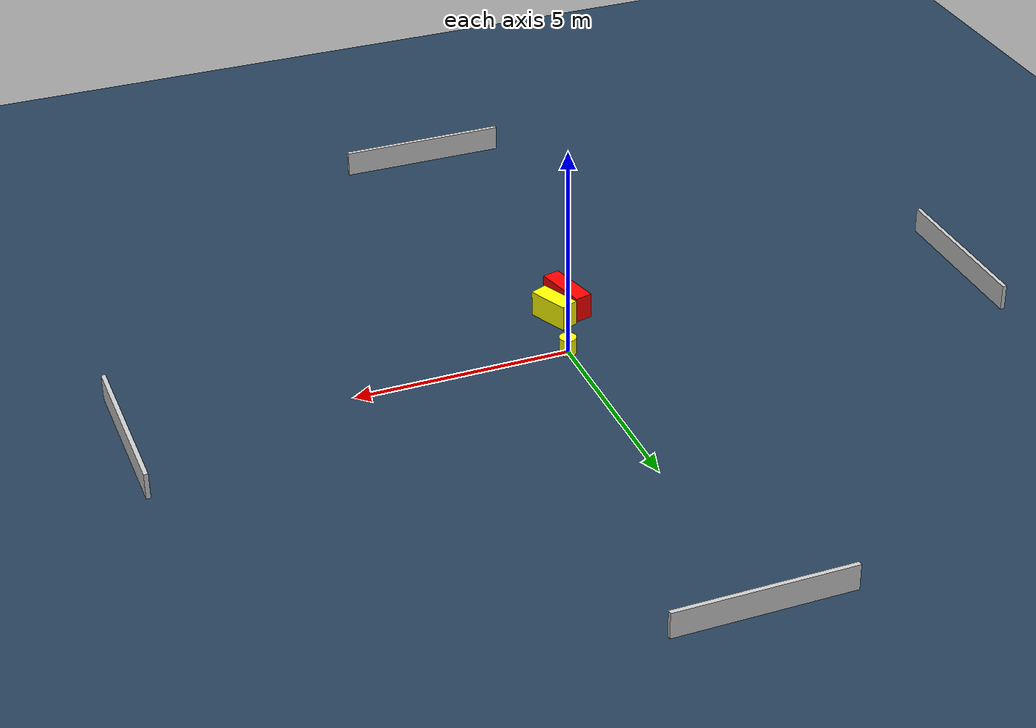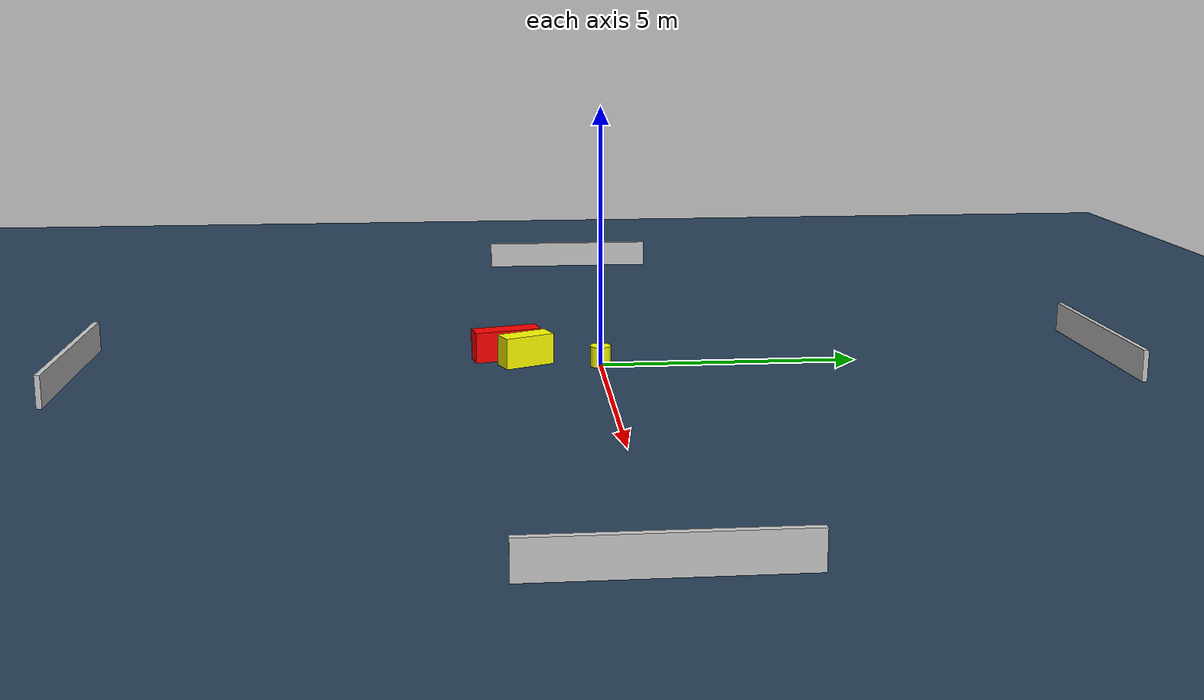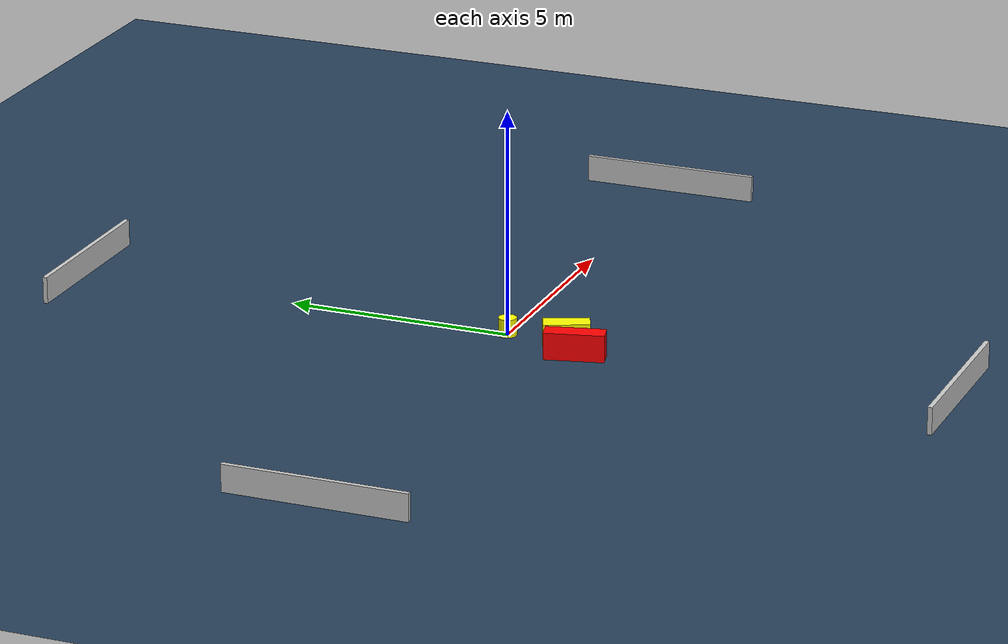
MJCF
<?xml version="1.0" ?>
<mujoco model="generated_environment">
  <option timestep="0.01" integrator="RK4" cone="elliptic"/>
  <default>
    <geom density="1"/>
  </default>
  <asset>
    <texture builtin="gradient" height="3072" name="skybox" rgb1="0.3 0.5 0.7" rgb2="0 0 0" type="skybox" width="512"/>
    <texture builtin="checker" height="300" name="groundplane" rgb1="0.2 0.3 0.4" rgb2="0.1 0.2 0.3" type="2d" width="300"/>
    <material name="groundplane" reflectance="0.2" texrepeat="5 5" texture="groundplane"/>
  </asset>
  <worldbody>
    <light dir="0 0 -1" directional="true" pos="0 0 1.5"/>
    <geom condim="3" friction="0.5 0.005 0.001" material="groundplane" name="floor" pos="0 0 0" size="0 0 0.05" type="plane"/>
    <body name="walls">
      <geom name="wall_1" condim="4" pos="-10.0 0.0 0.3" rgba="0.800000011920929 0.800000011920929 0.800000011920929 1.0" size="0.05 2.0 0.3" type="box"/>
      <geom name="wall_2" condim="4" pos="10.0 0.0 0.3" rgba="0.800000011920929 0.800000011920929 0.800000011920929 1.0" size="0.05 2.0 0.3" type="box"/>
      <geom name="wall_3" condim="4" pos="0.0 -10.0 0.3" rgba="0.800000011920929 0.800000011920929 0.800000011920929 1.0" size="2.0 0.05 0.3" type="box"/>
      <geom name="wall_4" condim="4" pos="0.0 10.0 0.3" rgba="0.800000011920929 0.800000011920929 0.800000011920929 1.0" size="2.0 0.05 0.3" type="box"/>
    </body>
    <body name="robot">
      <joint name="joint_x" type="slide" pos="0 0 0" axis="1 0 0"/>
      <joint name="joint_y" type="slide" pos="0 0 0" axis="0 1 0"/>
      <geom name="robot" type="cylinder" pos="0.0 0.0 0.2" size="0.2 0.2 0.0" mass="5.0" friction="1.0 0.005 0.0001" condim="4" rgba="1.0 1.0 0.0 1.0"/>
    </body>
    <body name="obstacle_1_movable">
      <geom name="obstacle_1_movable" condim="4" pos="-0.23774446544370312 -1.436043011082717 0.3" euler="0 0 203.5609966792569" friction="0.0 0.005 0.001" rgba="1.0 1.0 0.0 1.0" size="0.2127804254564576 0.5019115824376419 0.3" type="box" mass="0.1"/>
      <joint type="free"/>
    </body>
    <body name="obstacle_2_static">
      <geom name="obstacle_2_static" condim="4" pos="-0.7108444621477518 -1.8090630976080164 0.3" euler="0 0 103.78336729347711" friction="0.0 0.005 0.001" rgba="1.0 0.0 0.0 1.0" size="0.6529473817357234 0.20598348355332083 0.3" type="box"/>
    </body>
  </worldbody>
  <actuator>
    <motor name="actuator_x" joint="joint_x" gear="1" ctrlrange="-1 1"/>
    <motor name="actuator_y" joint="joint_y" gear="1" ctrlrange="-1 1"/>
  </actuator>
</mujoco>
